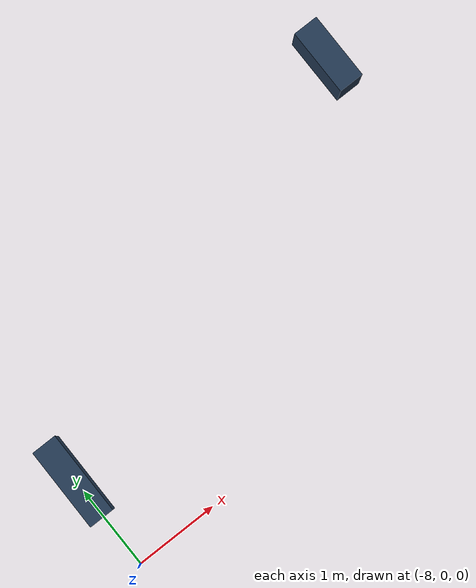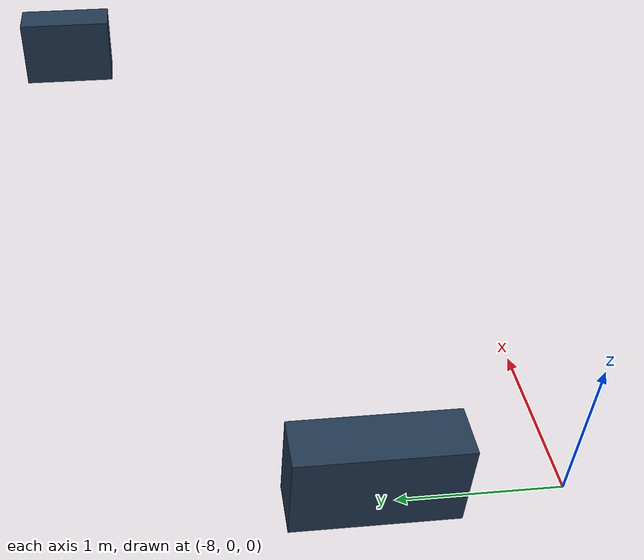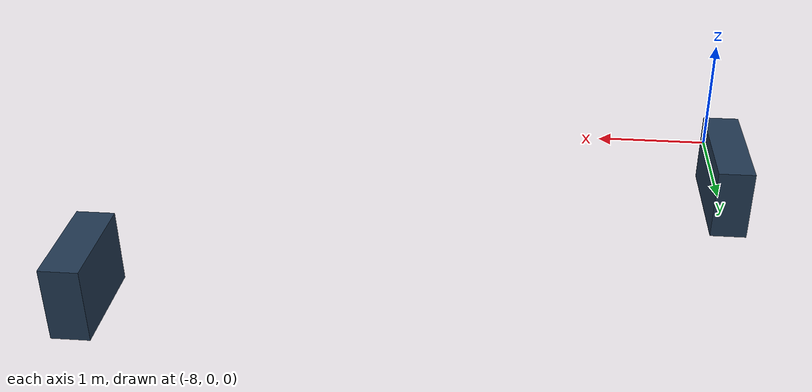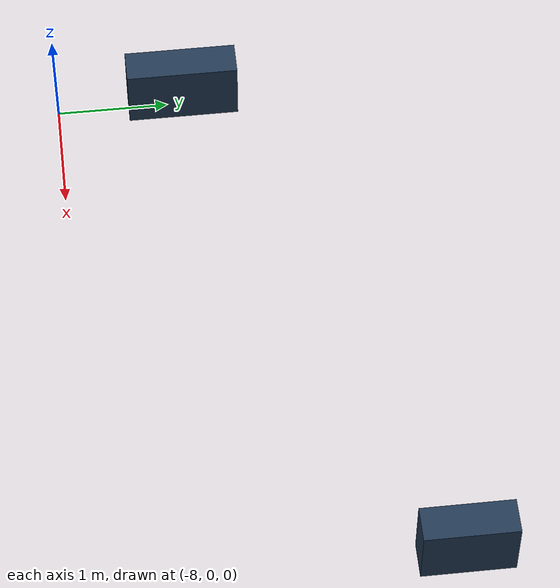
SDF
<sdf version="1.6">
 <world name="ifac_roboracer">
  <model name="map1_obstacle_2">
   <static>true</static>
   <pose>-3 3.054242265 0.3 0 0 0</pose>
   <link name="obstacle_link">
    <collision name="obstacle_collision"><geometry><box><size>0.3 0.8 0.6</size></box></geometry></collision>
    <visual name="obstacle_visual">
     <geometry><box><size>0.3 0.8 0.6</size></box></geometry>
     <cast_shadows>false</cast_shadows>
     <material>
      <ambient>0.13 0.22 0.32 1</ambient>
      <diffuse>0.13 0.22 0.32 1</diffuse>
      <specular>0 0 0 1</specular>
     </material>
    </visual>
   </link>
  </model>
  <model name="map1_obstacle_3">
   <static>true</static>
   <pose>-8 1.145160234 0.3 0 0 0</pose>
   <link name="obstacle_link">
    <collision name="obstacle_collision"><geometry><box><size>0.3 1.0 0.6</size></box></geometry></collision>
    <visual name="obstacle_visual">
     <geometry><box><size>0.3 1.0 0.6</size></box></geometry>
     <cast_shadows>false</cast_shadows>
     <material>
      <ambient>0.13 0.22 0.32 1</ambient>
      <diffuse>0.13 0.22 0.32 1</diffuse>
      <specular>0 0 0 1</specular>
     </material>
    </visual>
   </link>
  </model>
 </world>
</sdf>
